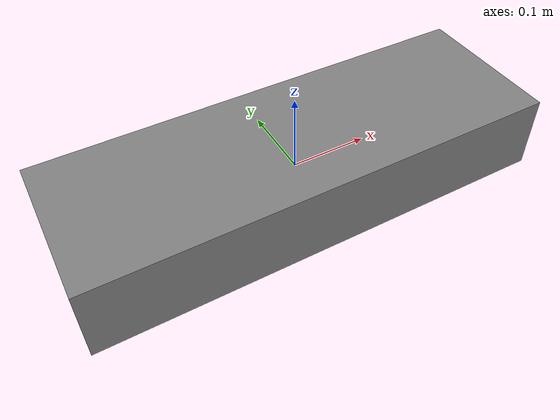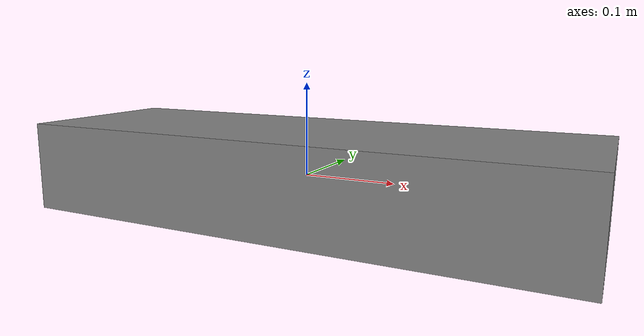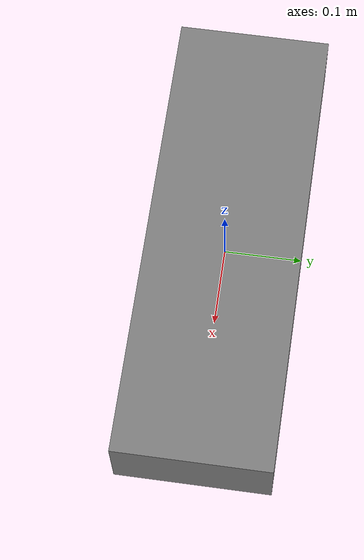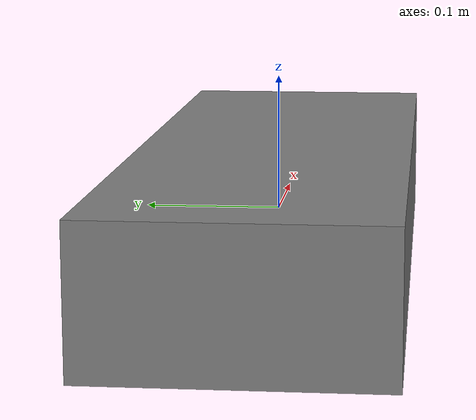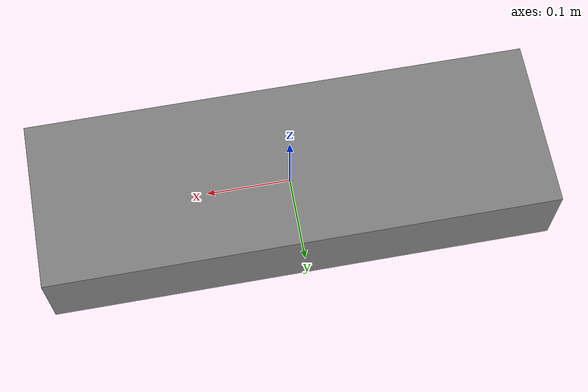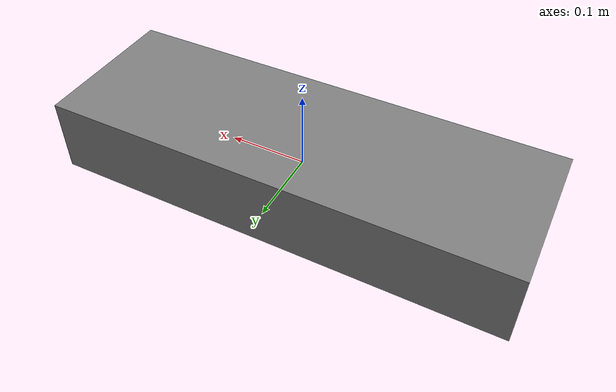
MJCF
<mujoco model="ball_standard">
            <option gravity="0 0 -9.81" timestep="0.002"/>
            <worldbody>
                <body name="b1" pos="0 0 0">
                    <joint type="ball" name="ball"/>
                    <geom type="box" size="0.3 0.1 0.05" mass="1.0"/>
                </body>
            </worldbody>
        </mujoco>
